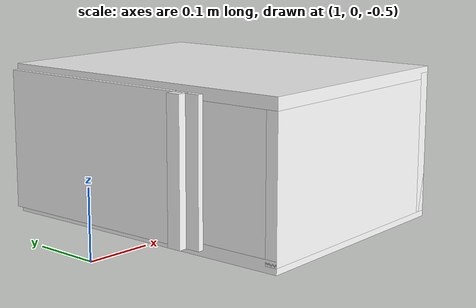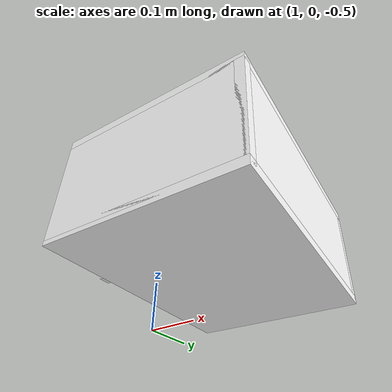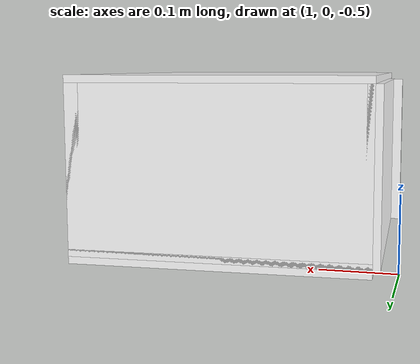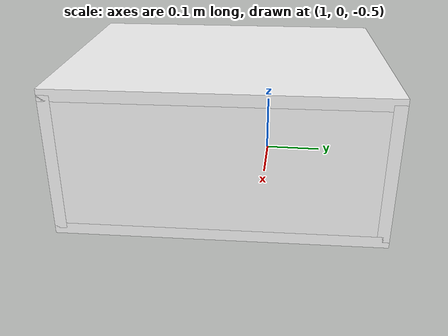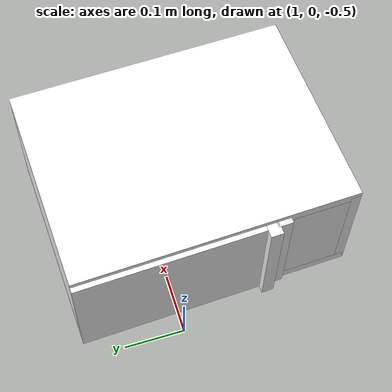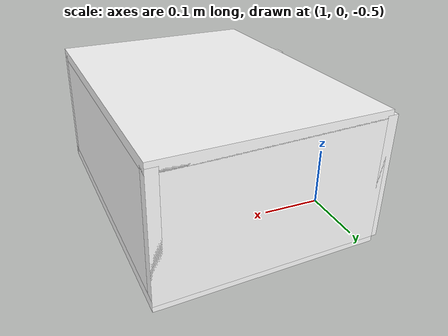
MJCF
<mujoco model="cabinet">
    <compiler angle="radian" eulerseq='zxy' />
    <option gravity = "0 0 0" />
    <option>
        <flag contact = "disable"/>
    </option>
    <statistic	extent="1.0" center="0.0 0.0 0.0"/>
    <visual>
        <map fogstart="3" fogend="5" force="0.1" znear=" 0.100000 " zfar=" 12.000000 "/>
    </visual>
    <size njmax="500" nconmax="100" />
    <actuator>
        <velocity joint="bottom_left_hinge" name="viva_revolution" kv='10'></velocity>
    </actuator>
    <asset>
        <texture builtin="flat" name="tabletex" height="32" width="32" rgb1="1 1 1" type="cube"></texture>
        <texture builtin="flat" name="objtex" height="32" width="32" rgb1="1 1 1" type="cube"></texture>
        <texture builtin="flat" name="handletex" height="32" width="32" rgb1="1 1 1" type="cube"></texture>
        <texture builtin="flat" name="wallpaper" height="32" width="32" rgb1="1 0 0" type="cube"></texture>
        <texture builtin="flat" name="kp" height="32" width="32" rgb1="1 1 1" type="cube"></texture>
        <material name="geomTable" shininess="0.03" specular="0.75" texture="tabletex"></material>
        <material name="geomObj" shininess="0.03" specular="0.75" texture="objtex"></material>
        <material name="geomHandle" shininess="0.03" specular="0.75" texture="handletex"></material>
        <material name="ax" shininess="0.03" specular="0.75" texture="wallpaper"></material>
        <material name="bg" shininess="0.03" specular="0.75" texture="wallpaper"></material>
        <material name="geomKeypad" shininess="0.03" specular="0.75" texture="kp"></material>
    </asset>
    <worldbody>
        <body name="cabinet_bottom" pos= " 1.195181 -0.052915 -0.455175 "  quat= " -0.023042 0.000000 0.000000 0.999734" >
            <inertial pos="0 0 0" mass="1" diaginertia="1 1 1" />
            <geom size= " 0.168691 0.224253 0.008231 "  type="box" material="geomObj" name="b"/>
            <body name="cabinet_left" pos= " 0.000000 -0.216022 0.096839 " >
                <inertial pos="0 0 0" mass="1" diaginertia="1 1 1" />
                <geom size= " 0.168691 0.008231 0.096839 "  type="box" material="geomObj" name="c" />
            </body>
            <body name="cabinet_right" pos= " 0.000000 0.216022 0.096839 " >
                <inertial pos="0 0 0" mass="1" diaginertia="1 1 1" />
                <geom size= " 0.168691 0.008231 0.096839 "  type="box" material="geomObj" name="d" />
            </body>
            <body name="cabinet_top" pos= " 0.000000 0.000000 0.193678 " >
                <inertial pos="0 0 0" mass="1" diaginertia="1 1 1" />
                <geom size= " 0.168691 0.224253 0.008231 "  type="box" material="geomObj" name="e"/>
            </body>
            <body name="cabinet_back" pos= " -0.160459 0.000000 0.096839 "  >
                <inertial pos="0 0 0" mass="1" diaginertia="1 1 1" />
                <geom size= " 0.008231 0.224253 0.096839 "  type="box" material="geomObj" name="f" />
            </body>
            <body name="cabinet_keypad" pos= " 0.008231 0.167190 0.096839 " >
                <inertial pos="0 0 0" mass="1" diaginertia="1 1 1" />
                <geom size= " 0.160459 0.056063 0.088608 "  type="box" material="geomKeypad" name="keypizzlemynizzle" />
            </body>
            <body name="cabinet_left_hinge" pos= " 0.168691 -0.224253 0.096839 " >
                <inertial pos= " 0.000000 0.168190 0.000000 "  mass="1" diaginertia="1 1 1" />
                <joint name="bottom_left_hinge" type="hinge" pos="0 0 0" axis="0 0 1" limited="true" range= "-2.3 0"  />
                <geom size= " 0.008231 0.168190 0.096839 "  pos= " 0.000000 0.168190 0.000000 "  type="box" material="geomObj" name="g"/>
                <body name="handle_link" pos= " 0.010000 0.306379 0.000000 " >
                    <inertial pos="0 0 0" mass="1" diaginertia="1 1 1" />
                    <geom size= " 0.010000 0.010000 0.096839 "  type="box" material="geomHandle" name="h"/>
                </body>
            </body>
        </body>
        <body name="external_camera_body_0" pos="0.0 0 0.00" >
            <camera euler="-1.57 1.57 0.0" fovy=" 54.280851 " name="external_camera_0" pos="0.0 0 0"></camera>
            <inertial pos= " 0.00 0.0 0.000000 " mass="1" diaginertia="1 1 1" />
            <joint name="cam_j" pos="0.0 0 0" axis = "1 0 0" type="free" />
        </body>
    </worldbody>
</mujoco>
